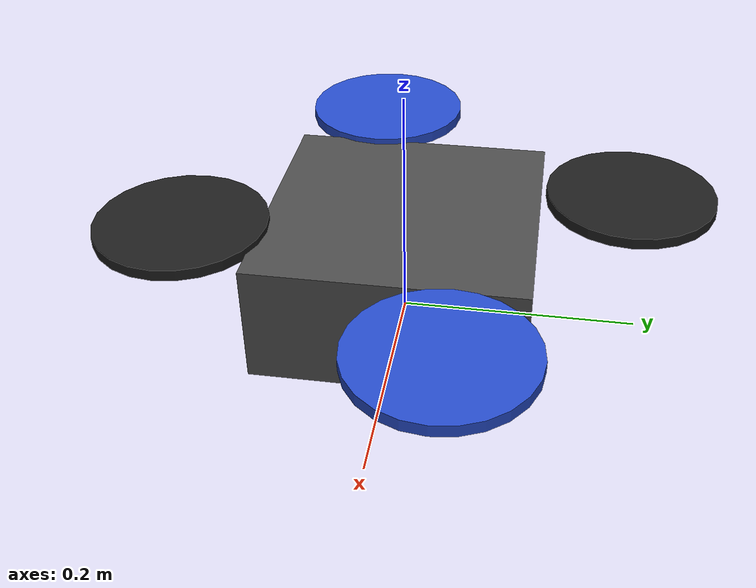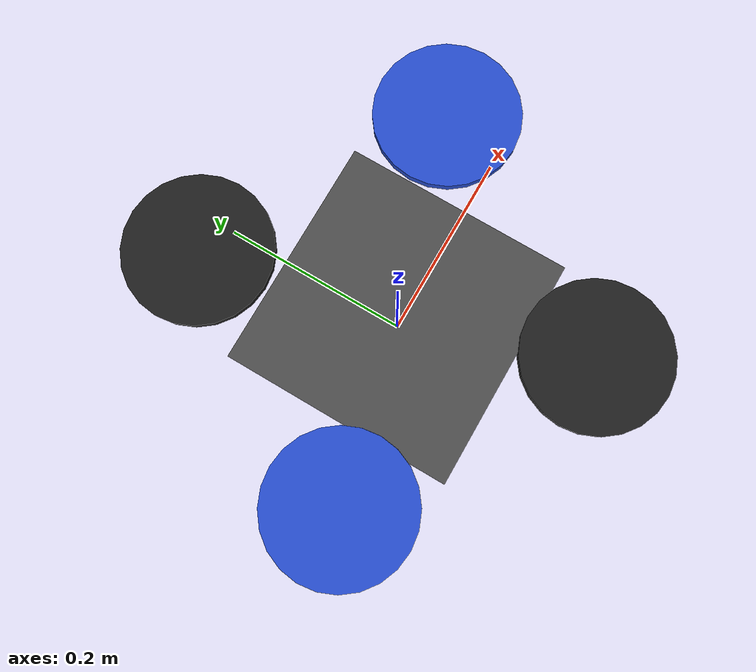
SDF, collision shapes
<?xml version='1.0'?>
<sdf version='1.6'>
  <model name='simple_merger'>
    <link name='base_link'>
      <pose frame=''>0 0 0 0 -0 0</pose>
      <inertial>
        <pose frame=''>0 0 0 0 -0 0</pose>
        <mass>1.5</mass>
        <inertia>
          <ixx>0.029125</ixx>
          <ixy>0</ixy>
          <ixz>0</ixz>
          <iyy>0.029125</iyy>
          <iyz>0</iyz>
          <izz>0.055225</izz>
        </inertia>
      </inertial>
      <collision name='base_link_inertia_collision'>
        <pose frame=''>0 0 0.0505 0 -0 0</pose>
        <geometry>
          <box>
            <size>0.224 0.224 0.101</size>
          </box>
        </geometry>
        <surface>
          <contact>
            <ode>
              <min_depth>0.001</min_depth>
              <max_vel>0</max_vel>
            </ode>
          </contact>
          <friction>
            <ode/>
          </friction>
        </surface>
      </collision>
      <visual name='base_link_inertia_visual'>
        <pose frame=''>-0.19092 -0.19092 0 0 -0 0</pose>
        <geometry>
          <mesh>
            <scale>0.001 0.001 0.001</scale>
            <uri>model://modular_description/meshes/Modular_assem.STL</uri>
          </mesh>
        </geometry>
        <material>
          <script>
            <name>Gazebo/DarkGrey</name>
            <uri>file://media/materials/scripts/gazebo.material</uri>
          </script>
        </material>
      </visual>
      <gravity>1</gravity>
      <velocity_decay/>
    </link>
    <link name='/imu_link'>
      <pose frame=''>0 0 0 0 -0 0</pose>
      <inertial>
        <pose frame=''>0 0 0 0 -0 0</pose>
        <mass>0.015</mass>
        <inertia>
          <ixx>1e-05</ixx>
          <ixy>0</ixy>
          <ixz>0</ixz>
          <iyy>1e-05</iyy>
          <iyz>0</iyz>
          <izz>1e-05</izz>
        </inertia>
      </inertial>
    </link>
    <joint name='/imu_joint' type='revolute'>
      <child>/imu_link</child>
      <parent>base_link</parent>
      <axis>
        <xyz>1 0 0</xyz>
        <limit>
          <lower>0</lower>
          <upper>0</upper>
          <effort>0</effort>
          <velocity>0</velocity>
        </limit>
        <dynamics>
          <spring_reference>0</spring_reference>
          <spring_stiffness>0</spring_stiffness>
        </dynamics>
        <use_parent_model_frame>1</use_parent_model_frame>
      </axis>
    </joint>
    <link name='rotor_0'>
      <pose frame=''>0.185757 0.053947 0.1015 0 -0 0</pose>
      <inertial>
        <pose frame=''>0 0 0 0 -0 0</pose>
        <mass>0.005</mass>
        <inertia>
          <ixx>9.75e-07</ixx>
          <ixy>0</ixy>
          <ixz>0</ixz>
          <iyy>0.000273104</iyy>
          <iyz>0</iyz>
          <izz>0.000274004</izz>
        </inertia>
      </inertial>
      <collision name='rotor_0_collision'>
        <pose frame=''>0 0 0 0 -0 0</pose>
        <geometry>
          <cylinder>
            <length>0.009405</length>
            <radius>0.07112</radius>
          </cylinder>
        </geometry>
        <surface>
          <contact>
            <ode/>
          </contact>
          <friction>
            <ode/>
          </friction>
        </surface>
      </collision>
      <visual name='rotor_0_visual'>
        <pose frame=''>0 0 0 0 -0 0</pose>
        <geometry>
          <mesh>
            <scale>0.6 0.6 0.6</scale>
            <uri>model://rotors_description/meshes/iris_prop_cw.dae</uri>
          </mesh>
        </geometry>
        <material>
          <script>
            <name>Gazebo/Blue</name>
            <uri>file://media/materials/scripts/gazebo.material</uri>
          </script>
        </material>
      </visual>
      <gravity>1</gravity>
      <velocity_decay/>
    </link>
    <joint name='rotor_0_joint' type='revolute'>
      <child>rotor_0</child>
      <parent>base_link</parent>
      <axis>
        <xyz>0 0 1</xyz>
        <limit>
          <lower>-1e+16</lower>
          <upper>1e+16</upper>
        </limit>
        <dynamics>
          <spring_reference>0</spring_reference>
          <spring_stiffness>0</spring_stiffness>
        </dynamics>
        <use_parent_model_frame>1</use_parent_model_frame>
      </axis>
    </joint>
    <link name='rotor_1'>
      <pose frame=''>-0.174868 -0.043184 0.1015 0 -0 0</pose>
      <inertial>
        <pose frame=''>0 0 0 0 -0 0</pose>
        <mass>0.007</mass>
        <inertia>
          <ixx>9.75e-07</ixx>
          <ixy>0</ixy>
          <ixz>0</ixz>
          <iyy>0.000273104</iyy>
          <iyz>0</iyz>
          <izz>0.000274004</izz>
        </inertia>
      </inertial>
      <collision name='rotor_1_collision'>
        <pose frame=''>0 0 0 0 -0 0</pose>
        <geometry>
          <cylinder>
            <length>0.009405</length>
            <radius>0.07112</radius>
          </cylinder>
        </geometry>
        <surface>
          <contact>
            <ode/>
          </contact>
          <friction>
            <ode/>
          </friction>
        </surface>
      </collision>
      <visual name='rotor_1_visual'>
        <pose frame=''>0 0 0 0 -0 0</pose>
        <geometry>
          <mesh>
            <scale>0.6 0.6 0.6</scale>
            <uri>model://rotors_description/meshes/iris_prop_cw.dae</uri>

          </mesh>
        </geometry>
        <material>
          <script>
            <name>Gazebo/Blue</name>
            <uri>file://media/materials/scripts/gazebo.material</uri>
          </script>
        </material>
      </visual>
      <gravity>1</gravity>
      <velocity_decay/>
    </link>
    <joint name='rotor_1_joint' type='revolute'>
      <child>rotor_1</child>
      <parent>base_link</parent>
      <axis>
        <xyz>0 0 1</xyz>
        <limit>
          <lower>-1e+16</lower>
          <upper>1e+16</upper>
        </limit>
        <dynamics>
          <spring_reference>0</spring_reference>
          <spring_stiffness>0</spring_stiffness>
        </dynamics>
        <use_parent_model_frame>1</use_parent_model_frame>
      </axis>
    </joint>
    <link name='rotor_2'>
      <pose frame=''>-0.042431 0.186857 0.1015 0 -0 0</pose>
      <inertial>
        <pose frame=''>0 0 0 0 -0 0</pose>
        <mass>0.005</mass>
        <inertia>
          <ixx>9.75e-07</ixx>
          <ixy>0</ixy>
          <ixz>0</ixz>
          <iyy>0.000273104</iyy>
          <iyz>0</iyz>
          <izz>0.000274004</izz>
        </inertia>
      </inertial>
      <collision name='rotor_2_collision'>
        <pose frame=''>0 0 0 0 -0 0</pose>
        <geometry>
          <cylinder>
            <length>0.009405</length>
            <radius>0.07112</radius>
          </cylinder>
        </geometry>
        <surface>
          <contact>
            <ode/>
          </contact>
          <friction>
            <ode/>
          </friction>
        </surface>
      </collision>
      <visual name='rotor_2_visual'>
        <pose frame=''>0 0 0 0 0 0</pose>
        <geometry>
          <mesh>
            <scale>0.6 0.6 0.6</scale>
            <uri>model://rotors_description/meshes/iris_prop_ccw.dae</uri>
          </mesh>
        </geometry>
        <material>
          <script>
            <name>Gazebo/Black</name>
            <uri>file://media/materials/scripts/gazebo.material</uri>
          </script>
        </material>
      </visual>
      <gravity>1</gravity>
      <velocity_decay/>
    </link>
    <joint name='rotor_2_joint' type='revolute'>
      <child>rotor_2</child>
      <parent>base_link</parent>
      <axis>
        <xyz>0 0 1</xyz>
        <limit>
          <lower>-1e+16</lower>
          <upper>1e+16</upper>
        </limit>
        <dynamics>
          <spring_reference>0</spring_reference>
          <spring_stiffness>0</spring_stiffness>
        </dynamics>
        <use_parent_model_frame>1</use_parent_model_frame>
      </axis>
    </joint>
    <link name='rotor_3'>
      <pose frame=''>0.054025 -0.174715 0.1015 0 -0 0</pose>
      <inertial>
        <pose frame=''>0 0 0 0 -0 0</pose>
        <mass>0.005</mass>
        <inertia>
          <ixx>9.75e-07</ixx>
          <ixy>0</ixy>
          <ixz>0</ixz>
          <iyy>0.000273104</iyy>
          <iyz>0</iyz>
          <izz>0.000274004</izz>
        </inertia>
      </inertial>
      <collision name='rotor_3_collision'>
        <pose frame=''>0 0 0 0 -0 0</pose>
        <geometry>
          <cylinder>
            <length>0.009405</length>
            <radius>0.07112</radius>
          </cylinder>
        </geometry>
        <surface>
          <contact>
            <ode/>
          </contact>
          <friction>
            <ode/>
          </friction>
        </surface>
      </collision>
      <visual name='rotor_3_visual'>
        <pose frame=''>0 0 0 0 -0 0</pose>
        <geometry>
          <mesh>
            <scale>0.6 0.6 0.6</scale>
            <uri>model://rotors_description/meshes/iris_prop_ccw.dae</uri>
          </mesh>
        </geometry>
        <material>
          <script>
            <name>Gazebo/Black</name>
            <uri>file://media/materials/scripts/gazebo.material</uri>
          </script>
        </material>
      </visual>
      <gravity>1</gravity>
      <velocity_decay/>
    </link>
    <joint name='rotor_3_joint' type='revolute'>
      <child>rotor_3</child>
      <parent>base_link</parent>
      <axis>
        <xyz>0 0 1</xyz>
        <limit>
          <lower>-1e+16</lower>
          <upper>1e+16</upper>
        </limit>
        <dynamics>
          <spring_reference>0</spring_reference>
          <spring_stiffness>0</spring_stiffness>
        </dynamics>
        <use_parent_model_frame>1</use_parent_model_frame>
      </axis>
    </joint>

    <link name="base_wheel"></link>
    <joint name="base_link_joint" type="fixed">
      <pose>0 0 0 0 0 0.05</pose>
      <parent link="base_wheel"/>
      <child link="base_link" />
    </joint>

    <plugin name="wheel_plugin" filename="libnexus_ros_force_based_move.so">
      <commandTopic>cmd_vel</commandTopic>
      <odometryTopic>odom</odometryTopic>
      <odometryFrame>odom</odometryFrame>
      <odometryRate>25.0</odometryRate>
      <robotBaseFrame>base_wheel</robotBaseFrame>
      <cmdVelTimeOut>0.25</cmdVelTimeOut>
      <publishOdometryTf>0</publishOdometryTf>
      <yaw_velocity_p_gain>1.0</yaw_velocity_p_gain>
      <x_velocity_p_gain>15.0</x_velocity_p_gain>
      <y_velocity_p_gain>15.0</y_velocity_p_gain>
      <max_x_velocity>0.6</max_x_velocity>
      <max_y_velocity>0.6</max_y_velocity>
      <max_yaw_velocity>0.5</max_yaw_velocity>
    </plugin>
  </model>
</sdf>
